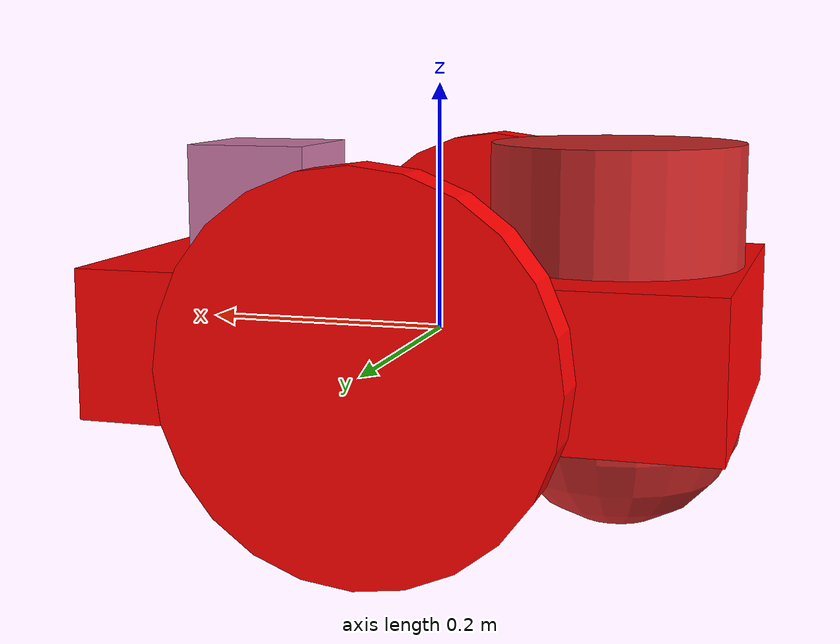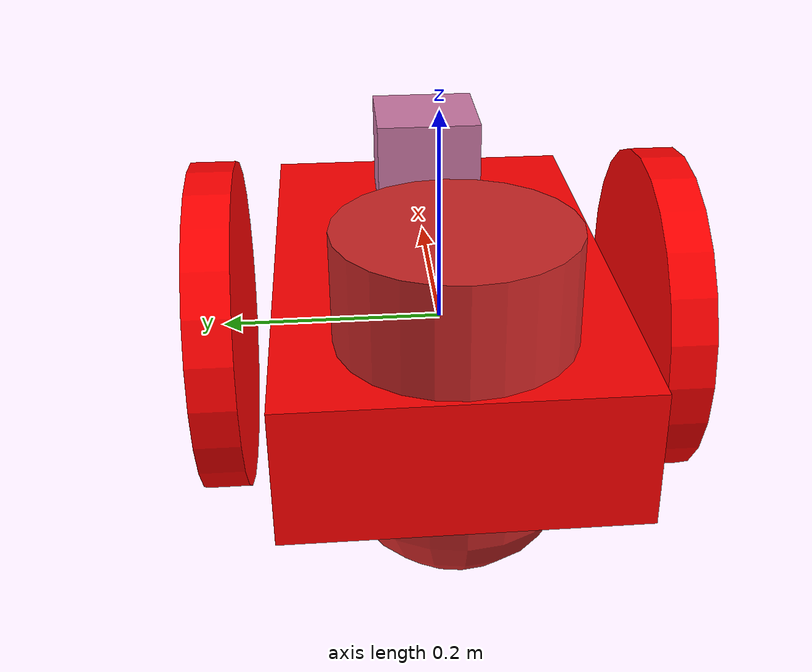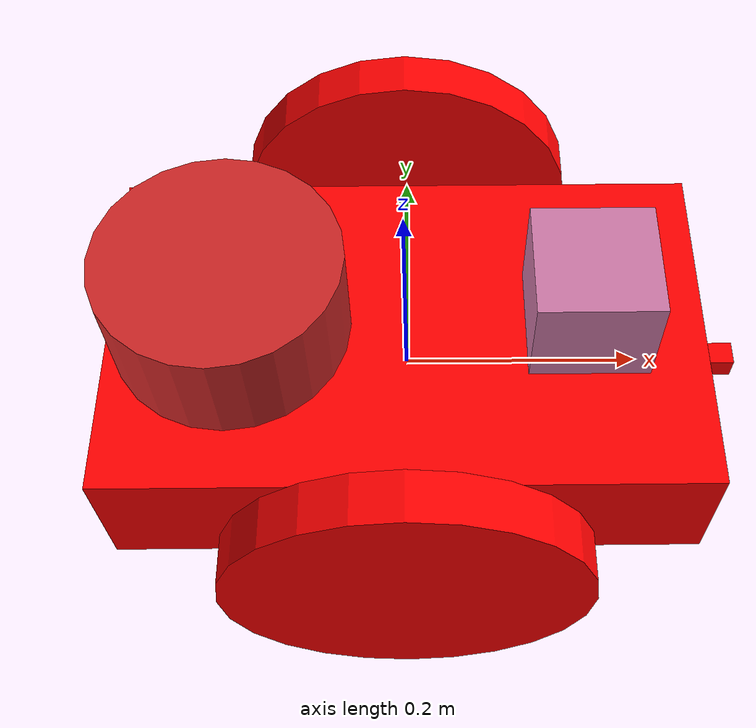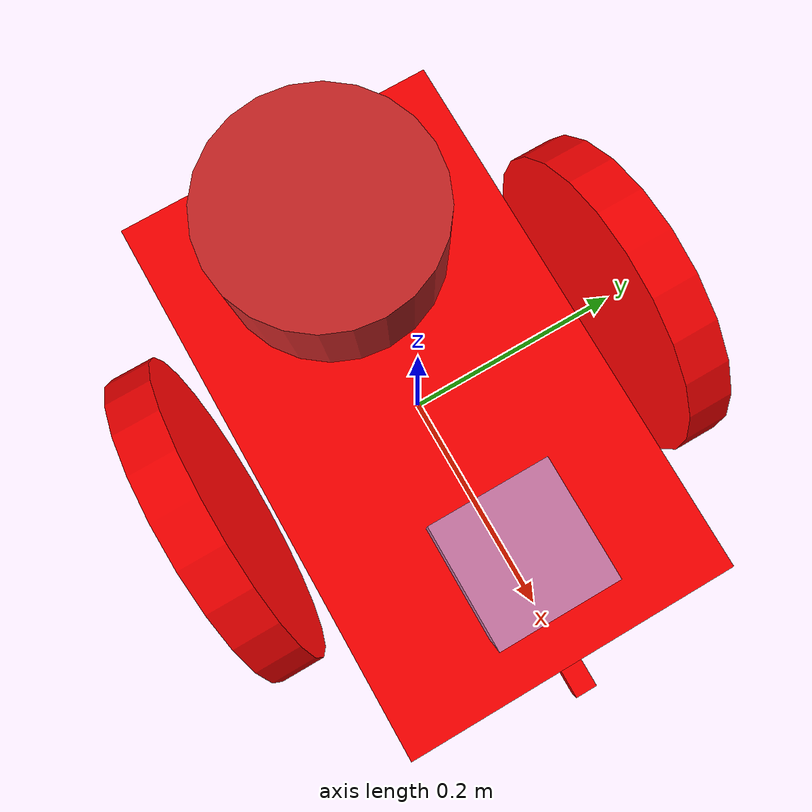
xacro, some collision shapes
<robot name="my_robot" xmlns:xacro="http://www.ros.org/wiki/xacro">
    <xacro:include filename="$(find my_robot)/urdf/my_robot.gazebo" />

    <link name="robot_footprint"></link>

    <joint name="robot_footprint_joint" type="fixed">
      <origin xyz="0 0 0" rpy="0 0 0" />
      <parent link="robot_footprint"/>
      <child link="chassis" />
    </joint>

    <link name='chassis'>
      <pose>0 0 0.075 0 0 0</pose> <!-- Updated Z position to half of the height -->

      <inertial>
        <mass value="15.0"/>
        <origin xyz="0.0 0 0" rpy="0 0 0"/>
        <inertia
            ixx="0.1" ixy="0" ixz="0"
            iyy="0.1" iyz="0"
            izz="0.1"
        />
      </inertial>

      <collision name='collision'>
        <origin xyz="0 0 0" rpy="0 0 0"/>
        <geometry>
          <box size=".5 .3 .12"/> <!-- Updated chassis size -->
        </geometry>
      </collision>

      <visual name='chassis_visual'>
        <origin xyz="0 0 0" rpy="0 0 0"/>
        <geometry>
          <box size=".5 .3 .12"/> <!-- Updated chassis size -->
        </geometry>
        <material name="chassisMaterial">
            <color rgba="1.0 0.0 0.0 1.0"/>
        </material>
      </visual>

      <collision name='back_caster_collision'>
        <origin xyz="-0.15 0 -0.05" rpy="0 0 0"/>
        <geometry>
          <sphere radius="0.0999"/>
        </geometry>
      </collision>

      <visual name='back_caster_visual'>
        <origin xyz="-0.15 0 -0.05" rpy="0 0 0"/>
        <geometry>
          <sphere radius="0.10"/>
        </geometry>
      </visual>

      <collision name='front_caster_collision'>
        <origin xyz="0.15 0 -0.05" rpy="0 0 0"/>
        <geometry>
          <sphere radius="0.0999"/>
        </geometry>
      </collision>

      <visual name='front_caster_visual'>
        <origin xyz="0.15 0 -0.05" rpy="0 0 0"/>
        <geometry>
          <sphere radius="0.10"/>
        </geometry>
      </visual>

      <collision name='cylinder_head_collision'>
        <origin xyz="-0.146012 0.0 0.1" rpy="0 0 0"/>
        <geometry>
          <cylinder radius="0.10" length="0.11"/>
        </geometry>
      </collision>

      <visual name='cylinder_head_visual'>
        <origin xyz="-0.146012 0.0 0.1" rpy="0 0 0"/>
        <geometry>
          <cylinder radius="0.10" length="0.11"/>
        </geometry>
      </visual>

    </link>

    <!-- Left Wheel -->
    <link name="left_wheel">
      <collision>
        <geometry>
          <cylinder radius="0.15" length="0.04"/> <!-- Updated radius -->
        </geometry>
        <origin xyz="0 0.05 0" rpy="0 1.5707 1.5707"/> <!-- Adjusted position -->
      </collision>
      <inertial>
        <mass value="5"/>
        <inertia ixx="0.1" ixy="0" ixz="0" iyy="0.1" iyz="0" izz="0.1"/>
      </inertial>
      <visual name="left_wheel_visual">
        <geometry>
          <cylinder radius="0.15" length="0.04"/> <!-- Updated radius -->
        </geometry>
        <material name="leftwheelMaterial">
          <color rgba="1.0 0.0 0.0 1.0"/>
        </material>
        <origin xyz="0 0.05 0" rpy="0 1.5707 1.5707"/> <!-- Adjusted position -->
      </visual>
    </link>

    <!-- Right Wheel -->
    <link name="right_wheel">
      <collision>
        <geometry>
          <cylinder radius="0.15" length="0.04"/> <!-- Updated radius -->
        </geometry>
        <origin xyz="0 -0.05 0" rpy="0 1.5707 1.5707"/> <!-- Adjusted position -->
      </collision>
      <inertial>
        <mass value="5"/>
        <inertia ixx="0.1" ixy="0" ixz="0" iyy="0.1" iyz="0" izz="0.1"/>
      </inertial>
      <visual name="right_wheel_visual">
        <geometry>
          <cylinder radius="0.15" length="0.04"/> <!-- Updated radius -->
        </geometry>
        <material name="rightwheelMaterial">
          <color rgba="1.0 0.0 0.0 1.0"/>
        </material>
        <origin xyz="0 -0.05 0" rpy="0 1.5707 1.5707"/> <!-- Adjusted position -->
      </visual>
    </link>

    <joint type="continuous" name="left_wheel_hinge">
      <origin xyz="0 0.15 0" rpy="0 0 0"/>
      <child link="left_wheel"/>
      <parent link="chassis"/>
      <axis xyz="0 1 0" rpy="0 0 0"/>
      <limit effort="10000" velocity="1000"/>
      <dynamics damping="1.0" friction="1.0"/>
    </joint>

    <joint type="continuous" name="right_wheel_hinge">
      <origin xyz="0 -0.15 0" rpy="0 0 0"/>
      <child link="right_wheel"/>
      <parent link="chassis"/>
      <axis xyz="0 1 0" rpy="0 0 0"/>
      <limit effort="10000" velocity="1000"/>
      <dynamics damping="1.0" friction="1.0"/>
    </joint>

    <!-- Camera -->
    <link name="camera">
      <collision>
        <geometry>
          <box size="0.05 0.02 0.02"/>
        </geometry>
        <origin xyz="0.03 0 -0.05" rpy="0 0 0"/>
      </collision>
      <inertial>
        <mass value="0.1"/>
        <inertia ixx="1e-6" ixy="0" ixz="0" iyy="1e-6" iyz="0" izz="1e-6"/>
      </inertial>
      <visual name="camera_visual">
        <geometry>
          <box size="0.05 0.02 0.02"/>
        </geometry>
        <origin xyz="0.03 0 -0.05" rpy="0 0 0"/>
        <material name="CameraMaterial">
          <color rgba="1.0 0.0 0.0 1.0"/>
        </material>
      </visual>
    </link>

    <joint type="fixed" name="camera_joint">
        <origin xyz="0.23 0 0.05" rpy="0 0 0"/> <!-- Updated Z position -->
        <child link="camera"/>
        <parent link="chassis"/>
    </joint>

    <joint name="camera_optical_joint" type="fixed">
      <origin xyz="0.23 0 0.05" rpy="-1.5707 0 -1.5707"/>
      <parent link="camera"/>
      <child link="camera_link_optical"/>
    </joint>

    <link name="camera_link_optical">
    </link>

    <gazebo reference="camera">
        <material>Gazebo/Green</material>
    </gazebo>

    <gazebo reference="chassis">
        <material>Gazebo/Red</material>
    </gazebo>

    <gazebo reference="cylinder_head">
        <material>Gazebo/Red</material>
    </gazebo>

    <gazebo reference="left_wheel">
        <material>Gazebo/Black</material>
    </gazebo>

    <gazebo reference="right_wheel">
        <material>Gazebo/Black</material>
    </gazebo>

    <!-- Lidar -->
    <link name="hokuyo">
      <collision>
        <geometry>
          <box size="0.1 0.1 0.1"/>
        </geometry>
        <origin xyz="0 0 0" rpy="0 0 0"/>
      </collision>
      <inertial>
        <mass value="1e-5"/>
        <inertia ixx="1e-6" ixy="0" ixz="0" iyy="1e-6" iyz="0" izz="1e-6"/>
      </inertial>
      <visual>
        <geometry>
          <mesh filename="package://my_robot/meshes/hokuyo.dae"/>
        </geometry>
        <origin xyz="0 0 0" rpy="0 0 0"/>
      </visual>
    </link>

    <joint type="fixed" name="hokuyo_joint">
        <origin xyz="0.15 0 0.1" rpy="0 0 0"/>
        <child link="hokuyo"/>
        <parent link="chassis"/>
    </joint>

</robot>
